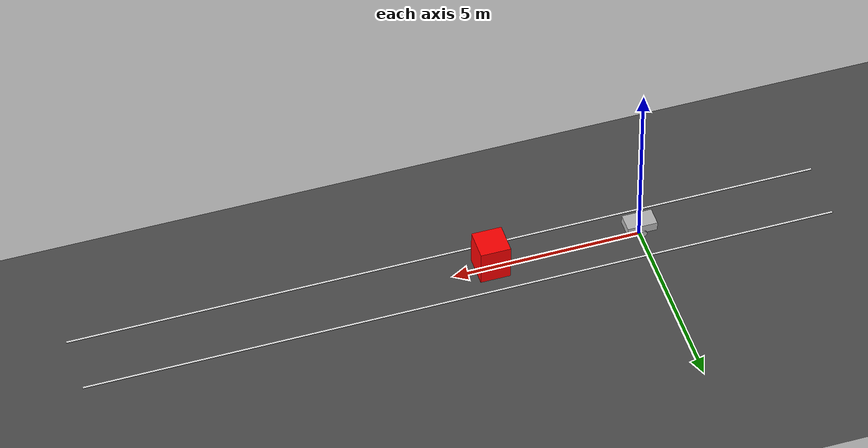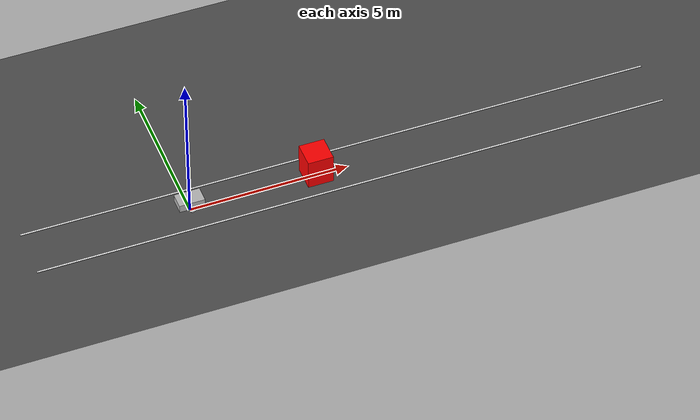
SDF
<?xml version="1.0"?>
<sdf version="1.9">
  <world name="test_world">
    <plugin
      filename="gz-sim-physics-system"
      name="gz::sim::systems::Physics"/>
    <plugin
      filename="gz-sim-user-commands-system"
      name="gz::sim::systems::UserCommands"/>
    <plugin
      filename="gz-sim-scene-broadcaster-system"
      name="gz::sim::systems::SceneBroadcaster"/>
    <plugin
      filename="gz-sim-sensors-system"
      name="gz::sim::systems::Sensors">
      <render_engine>ogre2</render_engine>
    </plugin>

    <light name="sun" type="directional">
      <cast_shadows>true</cast_shadows>
      <pose>0 0 10 0 0 0</pose>
      <diffuse>0.8 0.8 0.8 1</diffuse>
      <specular>0.2 0.2 0.2 1</specular>
      <direction>-0.5 0.1 -0.9</direction>
    </light>

    <model name="ground_plane">
      <static>true</static>
      <link name="link">
        <collision name="collision">
          <geometry>
            <plane>
              <normal>0 0 1</normal>
              <size>100 100</size>
            </plane>
          </geometry>
        </collision>
        <visual name="visual">
          <geometry>
            <plane>
              <normal>0 0 1</normal>
              <size>100 100</size>
            </plane>
          </geometry>
          <material>
            <ambient>0.3 0.3 0.3 1</ambient>
            <diffuse>0.3 0.3 0.3 1</diffuse>
          </material>
        </visual>
      </link>
    </model>

    <model name="lane_left">
      <static>true</static>
      <pose>5 0.8 0.01 0 0 0</pose>
      <link name="link">
        <visual name="visual">
          <geometry>
            <box>
              <size>20 0.05 0.02</size>
            </box>
          </geometry>
          <material>
            <ambient>1 1 1 1</ambient>
            <diffuse>1 1 1 1</diffuse>
          </material>
        </visual>
      </link>
    </model>

    <model name="lane_right">
      <static>true</static>
      <pose>5 -0.8 0.01 0 0 0</pose>
      <link name="link">
        <visual name="visual">
          <geometry>
            <box>
              <size>20 0.05 0.02</size>
            </box>
          </geometry>
          <material>
            <ambient>1 1 1 1</ambient>
            <diffuse>1 1 1 1</diffuse>
          </material>
        </visual>
      </link>
    </model>

    <model name="obstacle_box_1">
      <static>true</static>
      <pose>4 0 0.5 0 0 0</pose>
      <link name="link">
        <collision name="collision">
          <geometry>
            <box>
              <size>0.8 0.8 1.0</size>
            </box>
          </geometry>
        </collision>
        <visual name="visual">
          <geometry>
            <box>
              <size>0.8 0.8 1.0</size>
            </box>
          </geometry>
          <material>
            <ambient>1 0 0 1</ambient>
            <diffuse>1 0 0 1</diffuse>
          </material>
        </visual>
      </link>
    </model>

    <include>
      <uri>model://vehicle_model</uri>
      <pose>0 0 0.2 0 0 0</pose>
    </include>
  </world>
</sdf>

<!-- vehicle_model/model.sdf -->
<sdf version="1.9">
  <model name="vehicle_model">
    <pose>0 0 0.2 0 0 0</pose>

    <link name="chassis">
      <pose>0 0 0.2 0 0 0</pose>
      <inertial>
        <mass>20.0</mass>
        <inertia>
          <ixx>0.8</ixx>
          <iyy>1.2</iyy>
          <izz>1.2</izz>
        </inertia>
      </inertial>

      <collision name="collision">
        <geometry>
          <box>
            <size>0.8 0.5 0.25</size>
          </box>
        </geometry>
      </collision>

      <visual name="visual">
        <geometry>
          <box>
            <size>0.8 0.5 0.25</size>
          </box>
        </geometry>
      </visual>

      <sensor name="front_camera" type="camera">
        <pose>0.35 0 0.10 0 0 0</pose>
        <update_rate>20</update_rate>
        <camera>
          <horizontal_fov>1.3962634</horizontal_fov>
          <image>
            <width>640</width>
            <height>480</height>
            <format>R8G8B8</format>
          </image>
          <clip>
            <near>0.1</near>
            <far>100</far>
          </clip>
        </camera>
        <topic>/camera</topic>
        <always_on>true</always_on>
        <visualize>true</visualize>
      </sensor>

      <sensor name="front_lidar" type="gpu_lidar">
        <pose>0.30 0 0.12 0 0 0</pose>
        <update_rate>10</update_rate>
        <topic>/scan</topic>
        <ray>
          <scan>
            <horizontal>
              <samples>640</samples>
              <resolution>1</resolution>
              <min_angle>-1.5707</min_angle>
              <max_angle>1.5707</max_angle>
            </horizontal>
          </scan>
          <range>
            <min>0.10</min>
            <max>20.0</max>
            <resolution>0.01</resolution>
          </range>
        </ray>
        <always_on>true</always_on>
        <visualize>true</visualize>
      </sensor>
    </link>

    <link name="left_wheel">
      <pose>0 0.30 0.10 1.5707 0 0</pose>
      <inertial>
        <mass>1.0</mass>
        <inertia>
          <ixx>0.01</ixx>
          <iyy>0.01</iyy>
          <izz>0.01</izz>
        </inertia>
      </inertial>
      <collision name="collision">
        <geometry>
          <cylinder>
            <radius>0.10</radius>
            <length>0.05</length>
          </cylinder>
        </geometry>
      </collision>
      <visual name="visual">
        <geometry>
          <cylinder>
            <radius>0.10</radius>
            <length>0.05</length>
          </cylinder>
        </geometry>
      </visual>
    </link>

    <link name="right_wheel">
      <pose>0 -0.30 0.10 1.5707 0 0</pose>
      <inertial>
        <mass>1.0</mass>
        <inertia>
          <ixx>0.01</ixx>
          <iyy>0.01</iyy>
          <izz>0.01</izz>
        </inertia>
      </inertial>
      <collision name="collision">
        <geometry>
          <cylinder>
            <radius>0.10</radius>
            <length>0.05</length>
          </cylinder>
        </geometry>
      </collision>
      <visual name="visual">
        <geometry>
          <cylinder>
            <radius>0.10</radius>
            <length>0.05</length>
          </cylinder>
        </geometry>
      </visual>
    </link>

    <joint name="left_wheel_joint" type="revolute">
      <parent>chassis</parent>
      <child>left_wheel</child>
      <axis>
        <xyz>0 1 0</xyz>
        <limit>
          <lower>-1e16</lower>
          <upper>1e16</upper>
        </limit>
      </axis>
    </joint>

    <joint name="right_wheel_joint" type="revolute">
      <parent>chassis</parent>
      <child>right_wheel</child>
      <axis>
        <xyz>0 1 0</xyz>
        <limit>
          <lower>-1e16</lower>
          <upper>1e16</upper>
        </limit>
      </axis>
    </joint>

    <plugin
      filename="gz-sim-diff-drive-system"
      name="gz::sim::systems::DiffDrive">
      <left_joint>left_wheel_joint</left_joint>
      <right_joint>right_wheel_joint</right_joint>
      <wheel_separation>0.60</wheel_separation>
      <wheel_radius>0.10</wheel_radius>
      <topic>/cmd_vel</topic>
      <odom_topic>/odom</odom_topic>
      <frame_id>odom</frame_id>
      <child_frame_id>base_link</child_frame_id>
      <max_linear_acceleration>1.5</max_linear_acceleration>
      <max_angular_acceleration>2.0</max_angular_acceleration>
    </plugin>
  </model>
</sdf>
